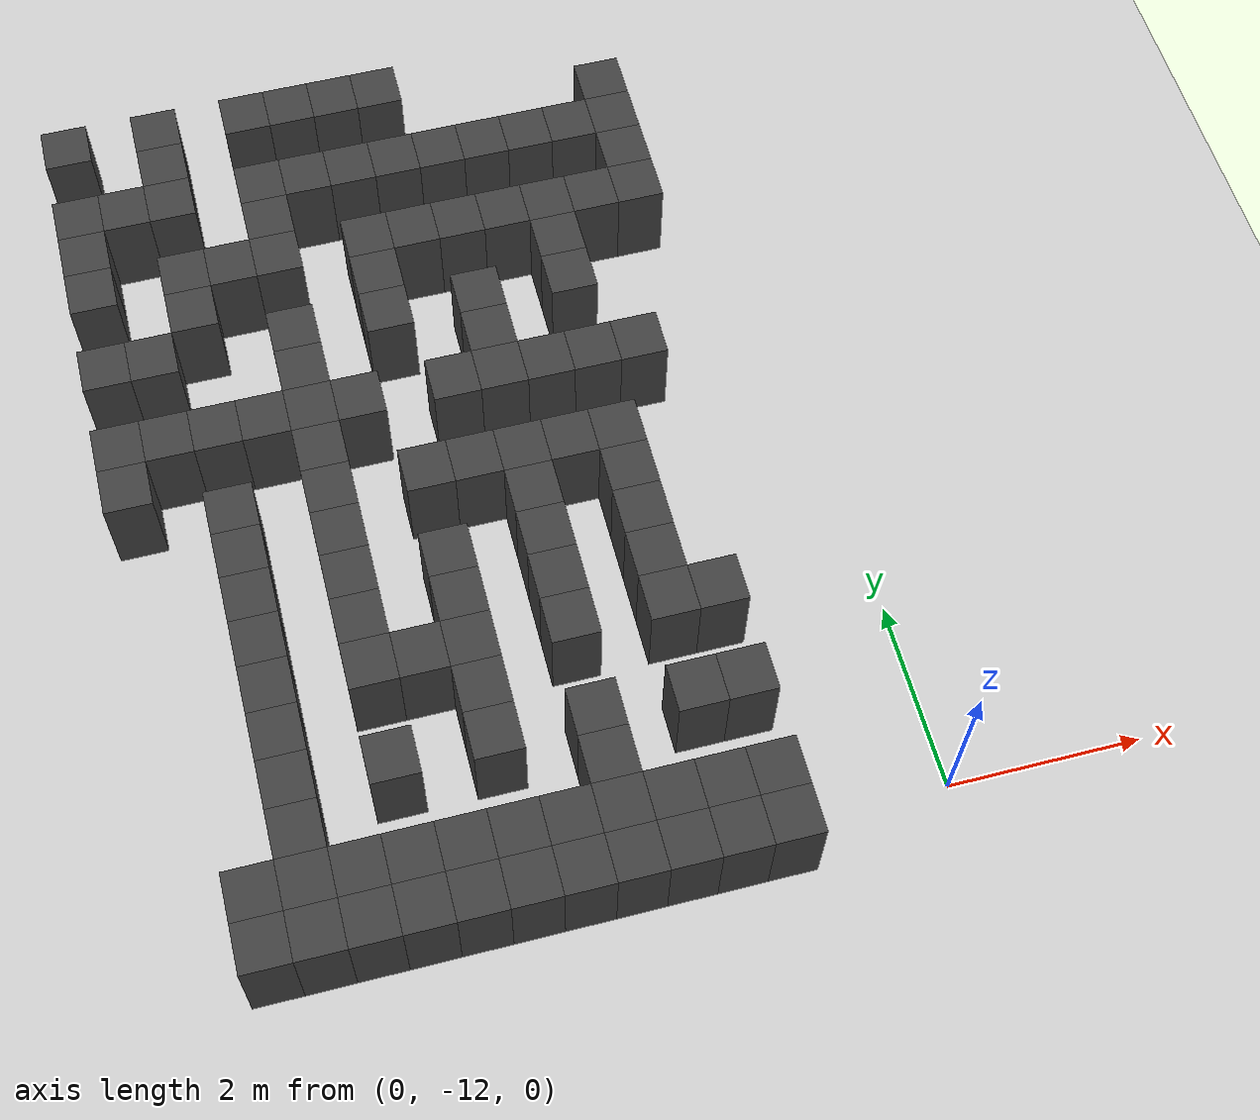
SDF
<sdf version="1.7">
 <world name="map_18347">
  <model name="ground_plane">
   <static>true</static>
   <link name="link">
    <collision name="collision">
     <geometry><plane><normal>0 0 1</normal><size>200 200</size></plane></geometry>
    </collision>
    <visual name="visual">
     <geometry><plane><normal>0 0 1</normal><size>200 200</size></plane></geometry>
     <material><ambient>0.8 0.8 0.8 1</ambient><diffuse>0.8 0.8 0.8 1</diffuse></material>
    </visual>
   </link>
  </model>
  <model name="maze_environment">
   <static>true</static>
   <link name="wall_762">
    <pose>-7.250 -2.750 0.500 0 0 0</pose>
    <collision name="col"><geometry><box><size>0.5 0.5 1.0</size></box></geometry></collision>
    <visual name="vis">
     <geometry><box><size>0.5 0.5 1.0</size></box></geometry>
     <material><ambient>0.15 0.15 0.15 1</ambient><diffuse>0.25 0.25 0.25 1</diffuse></material>
    </visual>
   </link>
   <link name="wall_763">
    <pose>-6.250 -2.750 0.500 0 0 0</pose>
    <collision name="col"><geometry><box><size>0.5 0.5 1.0</size></box></geometry></collision>
    <visual name="vis">
     <geometry><box><size>0.5 0.5 1.0</size></box></geometry>
     <material><ambient>0.15 0.15 0.15 1</ambient><diffuse>0.25 0.25 0.25 1</diffuse></material>
    </visual>
   </link>
   <link name="wall_764">
    <pose>-5.250 -2.750 0.500 0 0 0</pose>
    <collision name="col"><geometry><box><size>0.5 0.5 1.0</size></box></geometry></collision>
    <visual name="vis">
     <geometry><box><size>0.5 0.5 1.0</size></box></geometry>
     <material><ambient>0.15 0.15 0.15 1</ambient><diffuse>0.25 0.25 0.25 1</diffuse></material>
    </visual>
   </link>
   <link name="wall_765">
    <pose>-4.750 -2.750 0.500 0 0 0</pose>
    <collision name="col"><geometry><box><size>0.5 0.5 1.0</size></box></geometry></collision>
    <visual name="vis">
     <geometry><box><size>0.5 0.5 1.0</size></box></geometry>
     <material><ambient>0.15 0.15 0.15 1</ambient><diffuse>0.25 0.25 0.25 1</diffuse></material>
    </visual>
   </link>
   <link name="wall_766">
    <pose>-4.250 -2.750 0.500 0 0 0</pose>
    <collision name="col"><geometry><box><size>0.5 0.5 1.0</size></box></geometry></collision>
    <visual name="vis">
     <geometry><box><size>0.5 0.5 1.0</size></box></geometry>
     <material><ambient>0.15 0.15 0.15 1</ambient><diffuse>0.25 0.25 0.25 1</diffuse></material>
    </visual>
   </link>
   <link name="wall_767">
    <pose>-3.750 -2.750 0.500 0 0 0</pose>
    <collision name="col"><geometry><box><size>0.5 0.5 1.0</size></box></geometry></collision>
    <visual name="vis">
     <geometry><box><size>0.5 0.5 1.0</size></box></geometry>
     <material><ambient>0.15 0.15 0.15 1</ambient><diffuse>0.25 0.25 0.25 1</diffuse></material>
    </visual>
   </link>
   <link name="wall_792">
    <pose>-6.250 -3.250 0.500 0 0 0</pose>
    <collision name="col"><geometry><box><size>0.5 0.5 1.0</size></box></geometry></collision>
    <visual name="vis">
     <geometry><box><size>0.5 0.5 1.0</size></box></geometry>
     <material><ambient>0.15 0.15 0.15 1</ambient><diffuse>0.25 0.25 0.25 1</diffuse></material>
    </visual>
   </link>
   <link name="wall_793">
    <pose>-1.250 -3.250 0.500 0 0 0</pose>
    <collision name="col"><geometry><box><size>0.5 0.5 1.0</size></box></geometry></collision>
    <visual name="vis">
     <geometry><box><size>0.5 0.5 1.0</size></box></geometry>
     <material><ambient>0.15 0.15 0.15 1</ambient><diffuse>0.25 0.25 0.25 1</diffuse></material>
    </visual>
   </link>
   <link name="wall_810">
    <pose>-7.250 -3.750 0.500 0 0 0</pose>
    <collision name="col"><geometry><box><size>0.5 0.5 1.0</size></box></geometry></collision>
    <visual name="vis">
     <geometry><box><size>0.5 0.5 1.0</size></box></geometry>
     <material><ambient>0.15 0.15 0.15 1</ambient><diffuse>0.25 0.25 0.25 1</diffuse></material>
    </visual>
   </link>
   <link name="wall_811">
    <pose>-6.750 -3.750 0.500 0 0 0</pose>
    <collision name="col"><geometry><box><size>0.5 0.5 1.0</size></box></geometry></collision>
    <visual name="vis">
     <geometry><box><size>0.5 0.5 1.0</size></box></geometry>
     <material><ambient>0.15 0.15 0.15 1</ambient><diffuse>0.25 0.25 0.25 1</diffuse></material>
    </visual>
   </link>
   <link name="wall_812">
    <pose>-6.250 -3.750 0.500 0 0 0</pose>
    <collision name="col"><geometry><box><size>0.5 0.5 1.0</size></box></geometry></collision>
    <visual name="vis">
     <geometry><box><size>0.5 0.5 1.0</size></box></geometry>
     <material><ambient>0.15 0.15 0.15 1</ambient><diffuse>0.25 0.25 0.25 1</diffuse></material>
    </visual>
   </link>
   <link name="wall_813">
    <pose>-5.250 -3.750 0.500 0 0 0</pose>
    <collision name="col"><geometry><box><size>0.5 0.5 1.0</size></box></geometry></collision>
    <visual name="vis">
     <geometry><box><size>0.5 0.5 1.0</size></box></geometry>
     <material><ambient>0.15 0.15 0.15 1</ambient><diffuse>0.25 0.25 0.25 1</diffuse></material>
    </visual>
   </link>
   <link name="wall_814">
    <pose>-4.750 -3.750 0.500 0 0 0</pose>
    <collision name="col"><geometry><box><size>0.5 0.5 1.0</size></box></geometry></collision>
    <visual name="vis">
     <geometry><box><size>0.5 0.5 1.0</size></box></geometry>
     <material><ambient>0.15 0.15 0.15 1</ambient><diffuse>0.25 0.25 0.25 1</diffuse></material>
    </visual>
   </link>
   <link name="wall_815">
    <pose>-4.250 -3.750 0.500 0 0 0</pose>
    <collision name="col"><geometry><box><size>0.5 0.5 1.0</size></box></geometry></collision>
    <visual name="vis">
     <geometry><box><size>0.5 0.5 1.0</size></box></geometry>
     <material><ambient>0.15 0.15 0.15 1</ambient><diffuse>0.25 0.25 0.25 1</diffuse></material>
    </visual>
   </link>
   <link name="wall_816">
    <pose>-3.750 -3.750 0.500 0 0 0</pose>
    <collision name="col"><geometry><box><size>0.5 0.5 1.0</size></box></geometry></collision>
    <visual name="vis">
     <geometry><box><size>0.5 0.5 1.0</size></box></geometry>
     <material><ambient>0.15 0.15 0.15 1</ambient><diffuse>0.25 0.25 0.25 1</diffuse></material>
    </visual>
   </link>
   <link name="wall_817">
    <pose>-3.250 -3.750 0.500 0 0 0</pose>
    <collision name="col"><geometry><box><size>0.5 0.5 1.0</size></box></geometry></collision>
    <visual name="vis">
     <geometry><box><size>0.5 0.5 1.0</size></box></geometry>
     <material><ambient>0.15 0.15 0.15 1</ambient><diffuse>0.25 0.25 0.25 1</diffuse></material>
    </visual>
   </link>
   <link name="wall_818">
    <pose>-2.750 -3.750 0.500 0 0 0</pose>
    <collision name="col"><geometry><box><size>0.5 0.5 1.0</size></box></geometry></collision>
    <visual name="vis">
     <geometry><box><size>0.5 0.5 1.0</size></box></geometry>
     <material><ambient>0.15 0.15 0.15 1</ambient><diffuse>0.25 0.25 0.25 1</diffuse></material>
    </visual>
   </link>
   <link name="wall_819">
    <pose>-2.250 -3.750 0.500 0 0 0</pose>
    <collision name="col"><geometry><box><size>0.5 0.5 1.0</size></box></geometry></collision>
    <visual name="vis">
     <geometry><box><size>0.5 0.5 1.0</size></box></geometry>
     <material><ambient>0.15 0.15 0.15 1</ambient><diffuse>0.25 0.25 0.25 1</diffuse></material>
    </visual>
   </link>
   <link name="wall_820">
    <pose>-1.750 -3.750 0.500 0 0 0</pose>
    <collision name="col"><geometry><box><size>0.5 0.5 1.0</size></box></geometry></collision>
    <visual name="vis">
     <geometry><box><size>0.5 0.5 1.0</size></box></geometry>
     <material><ambient>0.15 0.15 0.15 1</ambient><diffuse>0.25 0.25 0.25 1</diffuse></material>
    </visual>
   </link>
   <link name="wall_821">
    <pose>-1.250 -3.750 0.500 0 0 0</pose>
    <collision name="col"><geometry><box><size>0.5 0.5 1.0</size></box></geometry></collision>
    <visual name="vis">
     <geometry><box><size>0.5 0.5 1.0</size></box></geometry>
     <material><ambient>0.15 0.15 0.15 1</ambient><diffuse>0.25 0.25 0.25 1</diffuse></material>
    </visual>
   </link>
   <link name="wall_843">
    <pose>-7.250 -4.250 0.500 0 0 0</pose>
    <collision name="col"><geometry><box><size>0.5 0.5 1.0</size></box></geometry></collision>
    <visual name="vis">
     <geometry><box><size>0.5 0.5 1.0</size></box></geometry>
     <material><ambient>0.15 0.15 0.15 1</ambient><diffuse>0.25 0.25 0.25 1</diffuse></material>
    </visual>
   </link>
   <link name="wall_844">
    <pose>-5.250 -4.250 0.500 0 0 0</pose>
    <collision name="col"><geometry><box><size>0.5 0.5 1.0</size></box></geometry></collision>
    <visual name="vis">
     <geometry><box><size>0.5 0.5 1.0</size></box></geometry>
     <material><ambient>0.15 0.15 0.15 1</ambient><diffuse>0.25 0.25 0.25 1</diffuse></material>
    </visual>
   </link>
   <link name="wall_845">
    <pose>-1.250 -4.250 0.500 0 0 0</pose>
    <collision name="col"><geometry><box><size>0.5 0.5 1.0</size></box></geometry></collision>
    <visual name="vis">
     <geometry><box><size>0.5 0.5 1.0</size></box></geometry>
     <material><ambient>0.15 0.15 0.15 1</ambient><diffuse>0.25 0.25 0.25 1</diffuse></material>
    </visual>
   </link>
   <link name="wall_861">
    <pose>-7.250 -4.750 0.500 0 0 0</pose>
    <collision name="col"><geometry><box><size>0.5 0.5 1.0</size></box></geometry></collision>
    <visual name="vis">
     <geometry><box><size>0.5 0.5 1.0</size></box></geometry>
     <material><ambient>0.15 0.15 0.15 1</ambient><diffuse>0.25 0.25 0.25 1</diffuse></material>
    </visual>
   </link>
   <link name="wall_862">
    <pose>-6.250 -4.750 0.500 0 0 0</pose>
    <collision name="col"><geometry><box><size>0.5 0.5 1.0</size></box></geometry></collision>
    <visual name="vis">
     <geometry><box><size>0.5 0.5 1.0</size></box></geometry>
     <material><ambient>0.15 0.15 0.15 1</ambient><diffuse>0.25 0.25 0.25 1</diffuse></material>
    </visual>
   </link>
   <link name="wall_863">
    <pose>-5.750 -4.750 0.500 0 0 0</pose>
    <collision name="col"><geometry><box><size>0.5 0.5 1.0</size></box></geometry></collision>
    <visual name="vis">
     <geometry><box><size>0.5 0.5 1.0</size></box></geometry>
     <material><ambient>0.15 0.15 0.15 1</ambient><diffuse>0.25 0.25 0.25 1</diffuse></material>
    </visual>
   </link>
   <link name="wall_864">
    <pose>-5.250 -4.750 0.500 0 0 0</pose>
    <collision name="col"><geometry><box><size>0.5 0.5 1.0</size></box></geometry></collision>
    <visual name="vis">
     <geometry><box><size>0.5 0.5 1.0</size></box></geometry>
     <material><ambient>0.15 0.15 0.15 1</ambient><diffuse>0.25 0.25 0.25 1</diffuse></material>
    </visual>
   </link>
   <link name="wall_865">
    <pose>-4.250 -4.750 0.500 0 0 0</pose>
    <collision name="col"><geometry><box><size>0.5 0.5 1.0</size></box></geometry></collision>
    <visual name="vis">
     <geometry><box><size>0.5 0.5 1.0</size></box></geometry>
     <material><ambient>0.15 0.15 0.15 1</ambient><diffuse>0.25 0.25 0.25 1</diffuse></material>
    </visual>
   </link>
   <link name="wall_866">
    <pose>-3.750 -4.750 0.500 0 0 0</pose>
    <collision name="col"><geometry><box><size>0.5 0.5 1.0</size></box></geometry></collision>
    <visual name="vis">
     <geometry><box><size>0.5 0.5 1.0</size></box></geometry>
     <material><ambient>0.15 0.15 0.15 1</ambient><diffuse>0.25 0.25 0.25 1</diffuse></material>
    </visual>
   </link>
   <link name="wall_867">
    <pose>-3.250 -4.750 0.500 0 0 0</pose>
    <collision name="col"><geometry><box><size>0.5 0.5 1.0</size></box></geometry></collision>
    <visual name="vis">
     <geometry><box><size>0.5 0.5 1.0</size></box></geometry>
     <material><ambient>0.15 0.15 0.15 1</ambient><diffuse>0.25 0.25 0.25 1</diffuse></material>
    </visual>
   </link>
   <link name="wall_868">
    <pose>-2.750 -4.750 0.500 0 0 0</pose>
    <collision name="col"><geometry><box><size>0.5 0.5 1.0</size></box></geometry></collision>
    <visual name="vis">
     <geometry><box><size>0.5 0.5 1.0</size></box></geometry>
     <material><ambient>0.15 0.15 0.15 1</ambient><diffuse>0.25 0.25 0.25 1</diffuse></material>
    </visual>
   </link>
   <link name="wall_869">
    <pose>-2.250 -4.750 0.500 0 0 0</pose>
    <collision name="col"><geometry><box><size>0.5 0.5 1.0</size></box></geometry></collision>
    <visual name="vis">
     <geometry><box><size>0.5 0.5 1.0</size></box></geometry>
     <material><ambient>0.15 0.15 0.15 1</ambient><diffuse>0.25 0.25 0.25 1</diffuse></material>
    </visual>
   </link>
   <link name="wall_870">
    <pose>-1.750 -4.750 0.500 0 0 0</pose>
    <collision name="col"><geometry><box><size>0.5 0.5 1.0</size></box></geometry></collision>
    <visual name="vis">
     <geometry><box><size>0.5 0.5 1.0</size></box></geometry>
     <material><ambient>0.15 0.15 0.15 1</ambient><diffuse>0.25 0.25 0.25 1</diffuse></material>
    </visual>
   </link>
   <link name="wall_871">
    <pose>-1.250 -4.750 0.500 0 0 0</pose>
    <collision name="col"><geometry><box><size>0.5 0.5 1.0</size></box></geometry></collision>
    <visual name="vis">
     <geometry><box><size>0.5 0.5 1.0</size></box></geometry>
     <material><ambient>0.15 0.15 0.15 1</ambient><diffuse>0.25 0.25 0.25 1</diffuse></material>
    </visual>
   </link>
   <link name="wall_894">
    <pose>-6.250 -5.250 0.500 0 0 0</pose>
    <collision name="col"><geometry><box><size>0.5 0.5 1.0</size></box></geometry></collision>
    <visual name="vis">
     <geometry><box><size>0.5 0.5 1.0</size></box></geometry>
     <material><ambient>0.15 0.15 0.15 1</ambient><diffuse>0.25 0.25 0.25 1</diffuse></material>
    </visual>
   </link>
   <link name="wall_895">
    <pose>-4.250 -5.250 0.500 0 0 0</pose>
    <collision name="col"><geometry><box><size>0.5 0.5 1.0</size></box></geometry></collision>
    <visual name="vis">
     <geometry><box><size>0.5 0.5 1.0</size></box></geometry>
     <material><ambient>0.15 0.15 0.15 1</ambient><diffuse>0.25 0.25 0.25 1</diffuse></material>
    </visual>
   </link>
   <link name="wall_896">
    <pose>-2.250 -5.250 0.500 0 0 0</pose>
    <collision name="col"><geometry><box><size>0.5 0.5 1.0</size></box></geometry></collision>
    <visual name="vis">
     <geometry><box><size>0.5 0.5 1.0</size></box></geometry>
     <material><ambient>0.15 0.15 0.15 1</ambient><diffuse>0.25 0.25 0.25 1</diffuse></material>
    </visual>
   </link>
   <link name="wall_912">
    <pose>-7.250 -5.750 0.500 0 0 0</pose>
    <collision name="col"><geometry><box><size>0.5 0.5 1.0</size></box></geometry></collision>
    <visual name="vis">
     <geometry><box><size>0.5 0.5 1.0</size></box></geometry>
     <material><ambient>0.15 0.15 0.15 1</ambient><diffuse>0.25 0.25 0.25 1</diffuse></material>
    </visual>
   </link>
   <link name="wall_913">
    <pose>-6.750 -5.750 0.500 0 0 0</pose>
    <collision name="col"><geometry><box><size>0.5 0.5 1.0</size></box></geometry></collision>
    <visual name="vis">
     <geometry><box><size>0.5 0.5 1.0</size></box></geometry>
     <material><ambient>0.15 0.15 0.15 1</ambient><diffuse>0.25 0.25 0.25 1</diffuse></material>
    </visual>
   </link>
   <link name="wall_914">
    <pose>-5.250 -5.750 0.500 0 0 0</pose>
    <collision name="col"><geometry><box><size>0.5 0.5 1.0</size></box></geometry></collision>
    <visual name="vis">
     <geometry><box><size>0.5 0.5 1.0</size></box></geometry>
     <material><ambient>0.15 0.15 0.15 1</ambient><diffuse>0.25 0.25 0.25 1</diffuse></material>
    </visual>
   </link>
   <link name="wall_915">
    <pose>-4.250 -5.750 0.500 0 0 0</pose>
    <collision name="col"><geometry><box><size>0.5 0.5 1.0</size></box></geometry></collision>
    <visual name="vis">
     <geometry><box><size>0.5 0.5 1.0</size></box></geometry>
     <material><ambient>0.15 0.15 0.15 1</ambient><diffuse>0.25 0.25 0.25 1</diffuse></material>
    </visual>
   </link>
   <link name="wall_916">
    <pose>-3.250 -5.750 0.500 0 0 0</pose>
    <collision name="col"><geometry><box><size>0.5 0.5 1.0</size></box></geometry></collision>
    <visual name="vis">
     <geometry><box><size>0.5 0.5 1.0</size></box></geometry>
     <material><ambient>0.15 0.15 0.15 1</ambient><diffuse>0.25 0.25 0.25 1</diffuse></material>
    </visual>
   </link>
   <link name="wall_917">
    <pose>-2.250 -5.750 0.500 0 0 0</pose>
    <collision name="col"><geometry><box><size>0.5 0.5 1.0</size></box></geometry></collision>
    <visual name="vis">
     <geometry><box><size>0.5 0.5 1.0</size></box></geometry>
     <material><ambient>0.15 0.15 0.15 1</ambient><diffuse>0.25 0.25 0.25 1</diffuse></material>
    </visual>
   </link>
   <link name="wall_940">
    <pose>-5.250 -6.250 0.500 0 0 0</pose>
    <collision name="col"><geometry><box><size>0.5 0.5 1.0</size></box></geometry></collision>
    <visual name="vis">
     <geometry><box><size>0.5 0.5 1.0</size></box></geometry>
     <material><ambient>0.15 0.15 0.15 1</ambient><diffuse>0.25 0.25 0.25 1</diffuse></material>
    </visual>
   </link>
   <link name="wall_941">
    <pose>-3.250 -6.250 0.500 0 0 0</pose>
    <collision name="col"><geometry><box><size>0.5 0.5 1.0</size></box></geometry></collision>
    <visual name="vis">
     <geometry><box><size>0.5 0.5 1.0</size></box></geometry>
     <material><ambient>0.15 0.15 0.15 1</ambient><diffuse>0.25 0.25 0.25 1</diffuse></material>
    </visual>
   </link>
   <link name="wall_957">
    <pose>-7.250 -6.750 0.500 0 0 0</pose>
    <collision name="col"><geometry><box><size>0.5 0.5 1.0</size></box></geometry></collision>
    <visual name="vis">
     <geometry><box><size>0.5 0.5 1.0</size></box></geometry>
     <material><ambient>0.15 0.15 0.15 1</ambient><diffuse>0.25 0.25 0.25 1</diffuse></material>
    </visual>
   </link>
   <link name="wall_958">
    <pose>-6.750 -6.750 0.500 0 0 0</pose>
    <collision name="col"><geometry><box><size>0.5 0.5 1.0</size></box></geometry></collision>
    <visual name="vis">
     <geometry><box><size>0.5 0.5 1.0</size></box></geometry>
     <material><ambient>0.15 0.15 0.15 1</ambient><diffuse>0.25 0.25 0.25 1</diffuse></material>
    </visual>
   </link>
   <link name="wall_959">
    <pose>-6.250 -6.750 0.500 0 0 0</pose>
    <collision name="col"><geometry><box><size>0.5 0.5 1.0</size></box></geometry></collision>
    <visual name="vis">
     <geometry><box><size>0.5 0.5 1.0</size></box></geometry>
     <material><ambient>0.15 0.15 0.15 1</ambient><diffuse>0.25 0.25 0.25 1</diffuse></material>
    </visual>
   </link>
   <link name="wall_960">
    <pose>-5.750 -6.750 0.500 0 0 0</pose>
    <collision name="col"><geometry><box><size>0.5 0.5 1.0</size></box></geometry></collision>
    <visual name="vis">
     <geometry><box><size>0.5 0.5 1.0</size></box></geometry>
     <material><ambient>0.15 0.15 0.15 1</ambient><diffuse>0.25 0.25 0.25 1</diffuse></material>
    </visual>
   </link>
   <link name="wall_961">
    <pose>-5.250 -6.750 0.500 0 0 0</pose>
    <collision name="col"><geometry><box><size>0.5 0.5 1.0</size></box></geometry></collision>
    <visual name="vis">
     <geometry><box><size>0.5 0.5 1.0</size></box></geometry>
     <material><ambient>0.15 0.15 0.15 1</ambient><diffuse>0.25 0.25 0.25 1</diffuse></material>
    </visual>
   </link>
   <link name="wall_962">
    <pose>-4.750 -6.750 0.500 0 0 0</pose>
    <collision name="col"><geometry><box><size>0.5 0.5 1.0</size></box></geometry></collision>
    <visual name="vis">
     <geometry><box><size>0.5 0.5 1.0</size></box></geometry>
     <material><ambient>0.15 0.15 0.15 1</ambient><diffuse>0.25 0.25 0.25 1</diffuse></material>
    </visual>
   </link>
   <link name="wall_963">
    <pose>-3.750 -6.750 0.500 0 0 0</pose>
    <collision name="col"><geometry><box><size>0.5 0.5 1.0</size></box></geometry></collision>
    <visual name="vis">
     <geometry><box><size>0.5 0.5 1.0</size></box></geometry>
     <material><ambient>0.15 0.15 0.15 1</ambient><diffuse>0.25 0.25 0.25 1</diffuse></material>
    </visual>
   </link>
   <link name="wall_964">
    <pose>-3.250 -6.750 0.500 0 0 0</pose>
    <collision name="col"><geometry><box><size>0.5 0.5 1.0</size></box></geometry></collision>
    <visual name="vis">
     <geometry><box><size>0.5 0.5 1.0</size></box></geometry>
     <material><ambient>0.15 0.15 0.15 1</ambient><diffuse>0.25 0.25 0.25 1</diffuse></material>
    </visual>
   </link>
   <link name="wall_965">
    <pose>-2.750 -6.750 0.500 0 0 0</pose>
    <collision name="col"><geometry><box><size>0.5 0.5 1.0</size></box></geometry></collision>
    <visual name="vis">
     <geometry><box><size>0.5 0.5 1.0</size></box></geometry>
     <material><ambient>0.15 0.15 0.15 1</ambient><diffuse>0.25 0.25 0.25 1</diffuse></material>
    </visual>
   </link>
   <link name="wall_966">
    <pose>-2.250 -6.750 0.500 0 0 0</pose>
    <collision name="col"><geometry><box><size>0.5 0.5 1.0</size></box></geometry></collision>
    <visual name="vis">
     <geometry><box><size>0.5 0.5 1.0</size></box></geometry>
     <material><ambient>0.15 0.15 0.15 1</ambient><diffuse>0.25 0.25 0.25 1</diffuse></material>
    </visual>
   </link>
   <link name="wall_967">
    <pose>-1.750 -6.750 0.500 0 0 0</pose>
    <collision name="col"><geometry><box><size>0.5 0.5 1.0</size></box></geometry></collision>
    <visual name="vis">
     <geometry><box><size>0.5 0.5 1.0</size></box></geometry>
     <material><ambient>0.15 0.15 0.15 1</ambient><diffuse>0.25 0.25 0.25 1</diffuse></material>
    </visual>
   </link>
   <link name="wall_990">
    <pose>-7.250 -7.250 0.500 0 0 0</pose>
    <collision name="col"><geometry><box><size>0.5 0.5 1.0</size></box></geometry></collision>
    <visual name="vis">
     <geometry><box><size>0.5 0.5 1.0</size></box></geometry>
     <material><ambient>0.15 0.15 0.15 1</ambient><diffuse>0.25 0.25 0.25 1</diffuse></material>
    </visual>
   </link>
   <link name="wall_991">
    <pose>-5.250 -7.250 0.500 0 0 0</pose>
    <collision name="col"><geometry><box><size>0.5 0.5 1.0</size></box></geometry></collision>
    <visual name="vis">
     <geometry><box><size>0.5 0.5 1.0</size></box></geometry>
     <material><ambient>0.15 0.15 0.15 1</ambient><diffuse>0.25 0.25 0.25 1</diffuse></material>
    </visual>
   </link>
   <link name="wall_1008">
    <pose>-6.250 -7.750 0.500 0 0 0</pose>
    <collision name="col"><geometry><box><size>0.5 0.5 1.0</size></box></geometry></collision>
    <visual name="vis">
     <geometry><box><size>0.5 0.5 1.0</size></box></geometry>
     <material><ambient>0.15 0.15 0.15 1</ambient><diffuse>0.25 0.25 0.25 1</diffuse></material>
    </visual>
   </link>
   <link name="wall_1009">
    <pose>-5.250 -7.750 0.500 0 0 0</pose>
    <collision name="col"><geometry><box><size>0.5 0.5 1.0</size></box></geometry></collision>
    <visual name="vis">
     <geometry><box><size>0.5 0.5 1.0</size></box></geometry>
     <material><ambient>0.15 0.15 0.15 1</ambient><diffuse>0.25 0.25 0.25 1</diffuse></material>
    </visual>
   </link>
   <link name="wall_1010">
    <pose>-4.250 -7.750 0.500 0 0 0</pose>
    <collision name="col"><geometry><box><size>0.5 0.5 1.0</size></box></geometry></collision>
    <visual name="vis">
     <geometry><box><size>0.5 0.5 1.0</size></box></geometry>
     <material><ambient>0.15 0.15 0.15 1</ambient><diffuse>0.25 0.25 0.25 1</diffuse></material>
    </visual>
   </link>
   <link name="wall_1011">
    <pose>-3.750 -7.750 0.500 0 0 0</pose>
    <collision name="col"><geometry><box><size>0.5 0.5 1.0</size></box></geometry></collision>
    <visual name="vis">
     <geometry><box><size>0.5 0.5 1.0</size></box></geometry>
     <material><ambient>0.15 0.15 0.15 1</ambient><diffuse>0.25 0.25 0.25 1</diffuse></material>
    </visual>
   </link>
   <link name="wall_1012">
    <pose>-3.250 -7.750 0.500 0 0 0</pose>
    <collision name="col"><geometry><box><size>0.5 0.5 1.0</size></box></geometry></collision>
    <visual name="vis">
     <geometry><box><size>0.5 0.5 1.0</size></box></geometry>
     <material><ambient>0.15 0.15 0.15 1</ambient><diffuse>0.25 0.25 0.25 1</diffuse></material>
    </visual>
   </link>
   <link name="wall_1013">
    <pose>-2.750 -7.750 0.500 0 0 0</pose>
    <collision name="col"><geometry><box><size>0.5 0.5 1.0</size></box></geometry></collision>
    <visual name="vis">
     <geometry><box><size>0.5 0.5 1.0</size></box></geometry>
     <material><ambient>0.15 0.15 0.15 1</ambient><diffuse>0.25 0.25 0.25 1</diffuse></material>
    </visual>
   </link>
   <link name="wall_1014">
    <pose>-2.250 -7.750 0.500 0 0 0</pose>
    <collision name="col"><geometry><box><size>0.5 0.5 1.0</size></box></geometry></collision>
    <visual name="vis">
     <geometry><box><size>0.5 0.5 1.0</size></box></geometry>
     <material><ambient>0.15 0.15 0.15 1</ambient><diffuse>0.25 0.25 0.25 1</diffuse></material>
    </visual>
   </link>
   <link name="wall_1040">
    <pose>-6.250 -8.250 0.500 0 0 0</pose>
    <collision name="col"><geometry><box><size>0.5 0.5 1.0</size></box></geometry></collision>
    <visual name="vis">
     <geometry><box><size>0.5 0.5 1.0</size></box></geometry>
     <material><ambient>0.15 0.15 0.15 1</ambient><diffuse>0.25 0.25 0.25 1</diffuse></material>
    </visual>
   </link>
   <link name="wall_1041">
    <pose>-5.250 -8.250 0.500 0 0 0</pose>
    <collision name="col"><geometry><box><size>0.5 0.5 1.0</size></box></geometry></collision>
    <visual name="vis">
     <geometry><box><size>0.5 0.5 1.0</size></box></geometry>
     <material><ambient>0.15 0.15 0.15 1</ambient><diffuse>0.25 0.25 0.25 1</diffuse></material>
    </visual>
   </link>
   <link name="wall_1042">
    <pose>-3.250 -8.250 0.500 0 0 0</pose>
    <collision name="col"><geometry><box><size>0.5 0.5 1.0</size></box></geometry></collision>
    <visual name="vis">
     <geometry><box><size>0.5 0.5 1.0</size></box></geometry>
     <material><ambient>0.15 0.15 0.15 1</ambient><diffuse>0.25 0.25 0.25 1</diffuse></material>
    </visual>
   </link>
   <link name="wall_1043">
    <pose>-2.250 -8.250 0.500 0 0 0</pose>
    <collision name="col"><geometry><box><size>0.5 0.5 1.0</size></box></geometry></collision>
    <visual name="vis">
     <geometry><box><size>0.5 0.5 1.0</size></box></geometry>
     <material><ambient>0.15 0.15 0.15 1</ambient><diffuse>0.25 0.25 0.25 1</diffuse></material>
    </visual>
   </link>
   <link name="wall_1063">
    <pose>-6.250 -8.750 0.500 0 0 0</pose>
    <collision name="col"><geometry><box><size>0.5 0.5 1.0</size></box></geometry></collision>
    <visual name="vis">
     <geometry><box><size>0.5 0.5 1.0</size></box></geometry>
     <material><ambient>0.15 0.15 0.15 1</ambient><diffuse>0.25 0.25 0.25 1</diffuse></material>
    </visual>
   </link>
   <link name="wall_1064">
    <pose>-5.250 -8.750 0.500 0 0 0</pose>
    <collision name="col"><geometry><box><size>0.5 0.5 1.0</size></box></geometry></collision>
    <visual name="vis">
     <geometry><box><size>0.5 0.5 1.0</size></box></geometry>
     <material><ambient>0.15 0.15 0.15 1</ambient><diffuse>0.25 0.25 0.25 1</diffuse></material>
    </visual>
   </link>
   <link name="wall_1065">
    <pose>-4.250 -8.750 0.500 0 0 0</pose>
    <collision name="col"><geometry><box><size>0.5 0.5 1.0</size></box></geometry></collision>
    <visual name="vis">
     <geometry><box><size>0.5 0.5 1.0</size></box></geometry>
     <material><ambient>0.15 0.15 0.15 1</ambient><diffuse>0.25 0.25 0.25 1</diffuse></material>
    </visual>
   </link>
   <link name="wall_1066">
    <pose>-3.250 -8.750 0.500 0 0 0</pose>
    <collision name="col"><geometry><box><size>0.5 0.5 1.0</size></box></geometry></collision>
    <visual name="vis">
     <geometry><box><size>0.5 0.5 1.0</size></box></geometry>
     <material><ambient>0.15 0.15 0.15 1</ambient><diffuse>0.25 0.25 0.25 1</diffuse></material>
    </visual>
   </link>
   <link name="wall_1067">
    <pose>-2.250 -8.750 0.500 0 0 0</pose>
    <collision name="col"><geometry><box><size>0.5 0.5 1.0</size></box></geometry></collision>
    <visual name="vis">
     <geometry><box><size>0.5 0.5 1.0</size></box></geometry>
     <material><ambient>0.15 0.15 0.15 1</ambient><diffuse>0.25 0.25 0.25 1</diffuse></material>
    </visual>
   </link>
   <link name="wall_1088">
    <pose>-6.250 -9.250 0.500 0 0 0</pose>
    <collision name="col"><geometry><box><size>0.5 0.5 1.0</size></box></geometry></collision>
    <visual name="vis">
     <geometry><box><size>0.5 0.5 1.0</size></box></geometry>
     <material><ambient>0.15 0.15 0.15 1</ambient><diffuse>0.25 0.25 0.25 1</diffuse></material>
    </visual>
   </link>
   <link name="wall_1089">
    <pose>-5.250 -9.250 0.500 0 0 0</pose>
    <collision name="col"><geometry><box><size>0.5 0.5 1.0</size></box></geometry></collision>
    <visual name="vis">
     <geometry><box><size>0.5 0.5 1.0</size></box></geometry>
     <material><ambient>0.15 0.15 0.15 1</ambient><diffuse>0.25 0.25 0.25 1</diffuse></material>
    </visual>
   </link>
   <link name="wall_1090">
    <pose>-4.250 -9.250 0.500 0 0 0</pose>
    <collision name="col"><geometry><box><size>0.5 0.5 1.0</size></box></geometry></collision>
    <visual name="vis">
     <geometry><box><size>0.5 0.5 1.0</size></box></geometry>
     <material><ambient>0.15 0.15 0.15 1</ambient><diffuse>0.25 0.25 0.25 1</diffuse></material>
    </visual>
   </link>
   <link name="wall_1091">
    <pose>-3.250 -9.250 0.500 0 0 0</pose>
    <collision name="col"><geometry><box><size>0.5 0.5 1.0</size></box></geometry></collision>
    <visual name="vis">
     <geometry><box><size>0.5 0.5 1.0</size></box></geometry>
     <material><ambient>0.15 0.15 0.15 1</ambient><diffuse>0.25 0.25 0.25 1</diffuse></material>
    </visual>
   </link>
   <link name="wall_1092">
    <pose>-2.250 -9.250 0.500 0 0 0</pose>
    <collision name="col"><geometry><box><size>0.5 0.5 1.0</size></box></geometry></collision>
    <visual name="vis">
     <geometry><box><size>0.5 0.5 1.0</size></box></geometry>
     <material><ambient>0.15 0.15 0.15 1</ambient><diffuse>0.25 0.25 0.25 1</diffuse></material>
    </visual>
   </link>
   <link name="wall_1112">
    <pose>-6.250 -9.750 0.500 0 0 0</pose>
    <collision name="col"><geometry><box><size>0.5 0.5 1.0</size></box></geometry></collision>
    <visual name="vis">
     <geometry><box><size>0.5 0.5 1.0</size></box></geometry>
     <material><ambient>0.15 0.15 0.15 1</ambient><diffuse>0.25 0.25 0.25 1</diffuse></material>
    </visual>
   </link>
   <link name="wall_1113">
    <pose>-5.250 -9.750 0.500 0 0 0</pose>
    <collision name="col"><geometry><box><size>0.5 0.5 1.0</size></box></geometry></collision>
    <visual name="vis">
     <geometry><box><size>0.5 0.5 1.0</size></box></geometry>
     <material><ambient>0.15 0.15 0.15 1</ambient><diffuse>0.25 0.25 0.25 1</diffuse></material>
    </visual>
   </link>
   <link name="wall_1114">
    <pose>-4.750 -9.750 0.500 0 0 0</pose>
    <collision name="col"><geometry><box><size>0.5 0.5 1.0</size></box></geometry></collision>
    <visual name="vis">
     <geometry><box><size>0.5 0.5 1.0</size></box></geometry>
     <material><ambient>0.15 0.15 0.15 1</ambient><diffuse>0.25 0.25 0.25 1</diffuse></material>
    </visual>
   </link>
   <link name="wall_1115">
    <pose>-4.250 -9.750 0.500 0 0 0</pose>
    <collision name="col"><geometry><box><size>0.5 0.5 1.0</size></box></geometry></collision>
    <visual name="vis">
     <geometry><box><size>0.5 0.5 1.0</size></box></geometry>
     <material><ambient>0.15 0.15 0.15 1</ambient><diffuse>0.25 0.25 0.25 1</diffuse></material>
    </visual>
   </link>
   <link name="wall_1116">
    <pose>-3.250 -9.750 0.500 0 0 0</pose>
    <collision name="col"><geometry><box><size>0.5 0.5 1.0</size></box></geometry></collision>
    <visual name="vis">
     <geometry><box><size>0.5 0.5 1.0</size></box></geometry>
     <material><ambient>0.15 0.15 0.15 1</ambient><diffuse>0.25 0.25 0.25 1</diffuse></material>
    </visual>
   </link>
   <link name="wall_1117">
    <pose>-2.250 -9.750 0.500 0 0 0</pose>
    <collision name="col"><geometry><box><size>0.5 0.5 1.0</size></box></geometry></collision>
    <visual name="vis">
     <geometry><box><size>0.5 0.5 1.0</size></box></geometry>
     <material><ambient>0.15 0.15 0.15 1</ambient><diffuse>0.25 0.25 0.25 1</diffuse></material>
    </visual>
   </link>
   <link name="wall_1118">
    <pose>-1.750 -9.750 0.500 0 0 0</pose>
    <collision name="col"><geometry><box><size>0.5 0.5 1.0</size></box></geometry></collision>
    <visual name="vis">
     <geometry><box><size>0.5 0.5 1.0</size></box></geometry>
     <material><ambient>0.15 0.15 0.15 1</ambient><diffuse>0.25 0.25 0.25 1</diffuse></material>
    </visual>
   </link>
   <link name="wall_1143">
    <pose>-6.250 -10.250 0.500 0 0 0</pose>
    <collision name="col"><geometry><box><size>0.5 0.5 1.0</size></box></geometry></collision>
    <visual name="vis">
     <geometry><box><size>0.5 0.5 1.0</size></box></geometry>
     <material><ambient>0.15 0.15 0.15 1</ambient><diffuse>0.25 0.25 0.25 1</diffuse></material>
    </visual>
   </link>
   <link name="wall_1144">
    <pose>-4.250 -10.250 0.500 0 0 0</pose>
    <collision name="col"><geometry><box><size>0.5 0.5 1.0</size></box></geometry></collision>
    <visual name="vis">
     <geometry><box><size>0.5 0.5 1.0</size></box></geometry>
     <material><ambient>0.15 0.15 0.15 1</ambient><diffuse>0.25 0.25 0.25 1</diffuse></material>
    </visual>
   </link>
   <link name="wall_1159">
    <pose>-6.250 -10.750 0.500 0 0 0</pose>
    <collision name="col"><geometry><box><size>0.5 0.5 1.0</size></box></geometry></collision>
    <visual name="vis">
     <geometry><box><size>0.5 0.5 1.0</size></box></geometry>
     <material><ambient>0.15 0.15 0.15 1</ambient><diffuse>0.25 0.25 0.25 1</diffuse></material>
    </visual>
   </link>
   <link name="wall_1160">
    <pose>-5.250 -10.750 0.500 0 0 0</pose>
    <collision name="col"><geometry><box><size>0.5 0.5 1.0</size></box></geometry></collision>
    <visual name="vis">
     <geometry><box><size>0.5 0.5 1.0</size></box></geometry>
     <material><ambient>0.15 0.15 0.15 1</ambient><diffuse>0.25 0.25 0.25 1</diffuse></material>
    </visual>
   </link>
   <link name="wall_1161">
    <pose>-4.250 -10.750 0.500 0 0 0</pose>
    <collision name="col"><geometry><box><size>0.5 0.5 1.0</size></box></geometry></collision>
    <visual name="vis">
     <geometry><box><size>0.5 0.5 1.0</size></box></geometry>
     <material><ambient>0.15 0.15 0.15 1</ambient><diffuse>0.25 0.25 0.25 1</diffuse></material>
    </visual>
   </link>
   <link name="wall_1162">
    <pose>-3.250 -10.750 0.500 0 0 0</pose>
    <collision name="col"><geometry><box><size>0.5 0.5 1.0</size></box></geometry></collision>
    <visual name="vis">
     <geometry><box><size>0.5 0.5 1.0</size></box></geometry>
     <material><ambient>0.15 0.15 0.15 1</ambient><diffuse>0.25 0.25 0.25 1</diffuse></material>
    </visual>
   </link>
   <link name="wall_1163">
    <pose>-2.250 -10.750 0.500 0 0 0</pose>
    <collision name="col"><geometry><box><size>0.5 0.5 1.0</size></box></geometry></collision>
    <visual name="vis">
     <geometry><box><size>0.5 0.5 1.0</size></box></geometry>
     <material><ambient>0.15 0.15 0.15 1</ambient><diffuse>0.25 0.25 0.25 1</diffuse></material>
    </visual>
   </link>
   <link name="wall_1164">
    <pose>-1.750 -10.750 0.500 0 0 0</pose>
    <collision name="col"><geometry><box><size>0.5 0.5 1.0</size></box></geometry></collision>
    <visual name="vis">
     <geometry><box><size>0.5 0.5 1.0</size></box></geometry>
     <material><ambient>0.15 0.15 0.15 1</ambient><diffuse>0.25 0.25 0.25 1</diffuse></material>
    </visual>
   </link>
   <link name="wall_1190">
    <pose>-6.250 -11.250 0.500 0 0 0</pose>
    <collision name="col"><geometry><box><size>0.5 0.5 1.0</size></box></geometry></collision>
    <visual name="vis">
     <geometry><box><size>0.5 0.5 1.0</size></box></geometry>
     <material><ambient>0.15 0.15 0.15 1</ambient><diffuse>0.25 0.25 0.25 1</diffuse></material>
    </visual>
   </link>
   <link name="wall_1191">
    <pose>-3.250 -11.250 0.500 0 0 0</pose>
    <collision name="col"><geometry><box><size>0.5 0.5 1.0</size></box></geometry></collision>
    <visual name="vis">
     <geometry><box><size>0.5 0.5 1.0</size></box></geometry>
     <material><ambient>0.15 0.15 0.15 1</ambient><diffuse>0.25 0.25 0.25 1</diffuse></material>
    </visual>
   </link>
   <link name="wall_1206">
    <pose>-6.750 -11.750 0.500 0 0 0</pose>
    <collision name="col"><geometry><box><size>0.5 0.5 1.0</size></box></geometry></collision>
    <visual name="vis">
     <geometry><box><size>0.5 0.5 1.0</size></box></geometry>
     <material><ambient>0.15 0.15 0.15 1</ambient><diffuse>0.25 0.25 0.25 1</diffuse></material>
    </visual>
   </link>
   <link name="wall_1207">
    <pose>-6.250 -11.750 0.500 0 0 0</pose>
    <collision name="col"><geometry><box><size>0.5 0.5 1.0</size></box></geometry></collision>
    <visual name="vis">
     <geometry><box><size>0.5 0.5 1.0</size></box></geometry>
     <material><ambient>0.15 0.15 0.15 1</ambient><diffuse>0.25 0.25 0.25 1</diffuse></material>
    </visual>
   </link>
   <link name="wall_1208">
    <pose>-5.750 -11.750 0.500 0 0 0</pose>
    <collision name="col"><geometry><box><size>0.5 0.5 1.0</size></box></geometry></collision>
    <visual name="vis">
     <geometry><box><size>0.5 0.5 1.0</size></box></geometry>
     <material><ambient>0.15 0.15 0.15 1</ambient><diffuse>0.25 0.25 0.25 1</diffuse></material>
    </visual>
   </link>
   <link name="wall_1209">
    <pose>-5.250 -11.750 0.500 0 0 0</pose>
    <collision name="col"><geometry><box><size>0.5 0.5 1.0</size></box></geometry></collision>
    <visual name="vis">
     <geometry><box><size>0.5 0.5 1.0</size></box></geometry>
     <material><ambient>0.15 0.15 0.15 1</ambient><diffuse>0.25 0.25 0.25 1</diffuse></material>
    </visual>
   </link>
   <link name="wall_1210">
    <pose>-4.750 -11.750 0.500 0 0 0</pose>
    <collision name="col"><geometry><box><size>0.5 0.5 1.0</size></box></geometry></collision>
    <visual name="vis">
     <geometry><box><size>0.5 0.5 1.0</size></box></geometry>
     <material><ambient>0.15 0.15 0.15 1</ambient><diffuse>0.25 0.25 0.25 1</diffuse></material>
    </visual>
   </link>
   <link name="wall_1211">
    <pose>-4.250 -11.750 0.500 0 0 0</pose>
    <collision name="col"><geometry><box><size>0.5 0.5 1.0</size></box></geometry></collision>
    <visual name="vis">
     <geometry><box><size>0.5 0.5 1.0</size></box></geometry>
     <material><ambient>0.15 0.15 0.15 1</ambient><diffuse>0.25 0.25 0.25 1</diffuse></material>
    </visual>
   </link>
   <link name="wall_1212">
    <pose>-3.750 -11.750 0.500 0 0 0</pose>
    <collision name="col"><geometry><box><size>0.5 0.5 1.0</size></box></geometry></collision>
    <visual name="vis">
     <geometry><box><size>0.5 0.5 1.0</size></box></geometry>
     <material><ambient>0.15 0.15 0.15 1</ambient><diffuse>0.25 0.25 0.25 1</diffuse></material>
    </visual>
   </link>
   <link name="wall_1213">
    <pose>-3.250 -11.750 0.500 0 0 0</pose>
    <collision name="col"><geometry><box><size>0.5 0.5 1.0</size></box></geometry></collision>
    <visual name="vis">
     <geometry><box><size>0.5 0.5 1.0</size></box></geometry>
     <material><ambient>0.15 0.15 0.15 1</ambient><diffuse>0.25 0.25 0.25 1</diffuse></material>
    </visual>
   </link>
   <link name="wall_1214">
    <pose>-2.750 -11.750 0.500 0 0 0</pose>
    <collision name="col"><geometry><box><size>0.5 0.5 1.0</size></box></geometry></collision>
    <visual name="vis">
     <geometry><box><size>0.5 0.5 1.0</size></box></geometry>
     <material><ambient>0.15 0.15 0.15 1</ambient><diffuse>0.25 0.25 0.25 1</diffuse></material>
    </visual>
   </link>
   <link name="wall_1215">
    <pose>-2.250 -11.750 0.500 0 0 0</pose>
    <collision name="col"><geometry><box><size>0.5 0.5 1.0</size></box></geometry></collision>
    <visual name="vis">
     <geometry><box><size>0.5 0.5 1.0</size></box></geometry>
     <material><ambient>0.15 0.15 0.15 1</ambient><diffuse>0.25 0.25 0.25 1</diffuse></material>
    </visual>
   </link>
   <link name="wall_1216">
    <pose>-1.750 -11.750 0.500 0 0 0</pose>
    <collision name="col"><geometry><box><size>0.5 0.5 1.0</size></box></geometry></collision>
    <visual name="vis">
     <geometry><box><size>0.5 0.5 1.0</size></box></geometry>
     <material><ambient>0.15 0.15 0.15 1</ambient><diffuse>0.25 0.25 0.25 1</diffuse></material>
    </visual>
   </link>
   <link name="wall_1254">
    <pose>-6.750 -12.250 0.500 0 0 0</pose>
    <collision name="col"><geometry><box><size>0.5 0.5 1.0</size></box></geometry></collision>
    <visual name="vis">
     <geometry><box><size>0.5 0.5 1.0</size></box></geometry>
     <material><ambient>0.15 0.15 0.15 1</ambient><diffuse>0.25 0.25 0.25 1</diffuse></material>
    </visual>
   </link>
   <link name="wall_1255">
    <pose>-6.250 -12.250 0.500 0 0 0</pose>
    <collision name="col"><geometry><box><size>0.5 0.5 1.0</size></box></geometry></collision>
    <visual name="vis">
     <geometry><box><size>0.5 0.5 1.0</size></box></geometry>
     <material><ambient>0.15 0.15 0.15 1</ambient><diffuse>0.25 0.25 0.25 1</diffuse></material>
    </visual>
   </link>
   <link name="wall_1256">
    <pose>-5.750 -12.250 0.500 0 0 0</pose>
    <collision name="col"><geometry><box><size>0.5 0.5 1.0</size></box></geometry></collision>
    <visual name="vis">
     <geometry><box><size>0.5 0.5 1.0</size></box></geometry>
     <material><ambient>0.15 0.15 0.15 1</ambient><diffuse>0.25 0.25 0.25 1</diffuse></material>
    </visual>
   </link>
   <link name="wall_1257">
    <pose>-5.250 -12.250 0.500 0 0 0</pose>
    <collision name="col"><geometry><box><size>0.5 0.5 1.0</size></box></geometry></collision>
    <visual name="vis">
     <geometry><box><size>0.5 0.5 1.0</size></box></geometry>
     <material><ambient>0.15 0.15 0.15 1</ambient><diffuse>0.25 0.25 0.25 1</diffuse></material>
    </visual>
   </link>
   <link name="wall_1258">
    <pose>-4.750 -12.250 0.500 0 0 0</pose>
    <collision name="col"><geometry><box><size>0.5 0.5 1.0</size></box></geometry></collision>
    <visual name="vis">
     <geometry><box><size>0.5 0.5 1.0</size></box></geometry>
     <material><ambient>0.15 0.15 0.15 1</ambient><diffuse>0.25 0.25 0.25 1</diffuse></material>
    </visual>
   </link>
   <link name="wall_1259">
    <pose>-4.250 -12.250 0.500 0 0 0</pose>
    <collision name="col"><geometry><box><size>0.5 0.5 1.0</size></box></geometry></collision>
    <visual name="vis">
     <geometry><box><size>0.5 0.5 1.0</size></box></geometry>
     <material><ambient>0.15 0.15 0.15 1</ambient><diffuse>0.25 0.25 0.25 1</diffuse></material>
    </visual>
   </link>
   <link name="wall_1260">
    <pose>-3.750 -12.250 0.500 0 0 0</pose>
    <collision name="col"><geometry><box><size>0.5 0.5 1.0</size></box></geometry></collision>
    <visual name="vis">
     <geometry><box><size>0.5 0.5 1.0</size></box></geometry>
     <material><ambient>0.15 0.15 0.15 1</ambient><diffuse>0.25 0.25 0.25 1</diffuse></material>
    </visual>
   </link>
   <link name="wall_1261">
    <pose>-3.250 -12.250 0.500 0 0 0</pose>
    <collision name="col"><geometry><box><size>0.5 0.5 1.0</size></box></geometry></collision>
    <visual name="vis">
     <geometry><box><size>0.5 0.5 1.0</size></box></geometry>
     <material><ambient>0.15 0.15 0.15 1</ambient><diffuse>0.25 0.25 0.25 1</diffuse></material>
    </visual>
   </link>
   <link name="wall_1262">
    <pose>-2.750 -12.250 0.500 0 0 0</pose>
    <collision name="col"><geometry><box><size>0.5 0.5 1.0</size></box></geometry></collision>
    <visual name="vis">
     <geometry><box><size>0.5 0.5 1.0</size></box></geometry>
     <material><ambient>0.15 0.15 0.15 1</ambient><diffuse>0.25 0.25 0.25 1</diffuse></material>
    </visual>
   </link>
   <link name="wall_1263">
    <pose>-2.250 -12.250 0.500 0 0 0</pose>
    <collision name="col"><geometry><box><size>0.5 0.5 1.0</size></box></geometry></collision>
    <visual name="vis">
     <geometry><box><size>0.5 0.5 1.0</size></box></geometry>
     <material><ambient>0.15 0.15 0.15 1</ambient><diffuse>0.25 0.25 0.25 1</diffuse></material>
    </visual>
   </link>
   <link name="wall_1264">
    <pose>-1.750 -12.250 0.500 0 0 0</pose>
    <collision name="col"><geometry><box><size>0.5 0.5 1.0</size></box></geometry></collision>
    <visual name="vis">
     <geometry><box><size>0.5 0.5 1.0</size></box></geometry>
     <material><ambient>0.15 0.15 0.15 1</ambient><diffuse>0.25 0.25 0.25 1</diffuse></material>
    </visual>
   </link>
  </model>
 </world>
</sdf>
